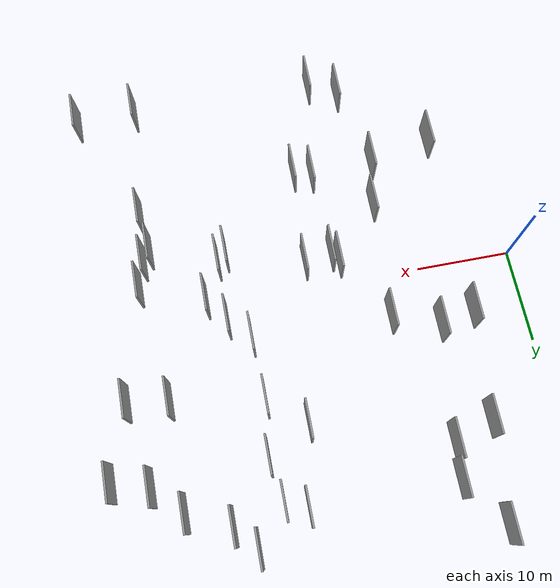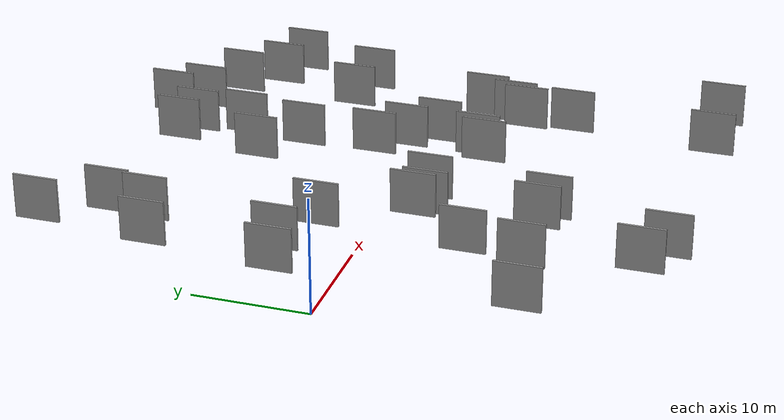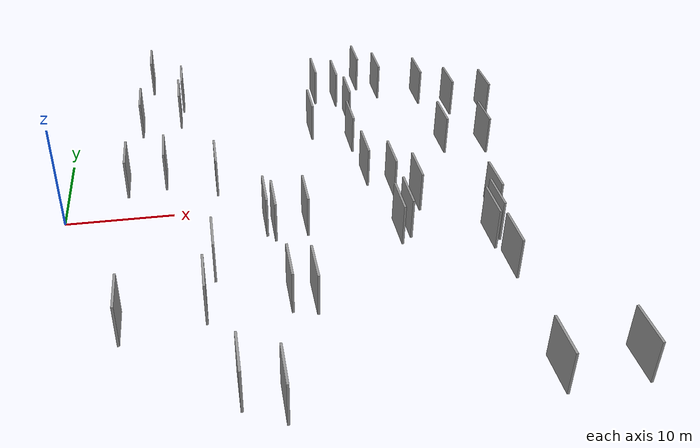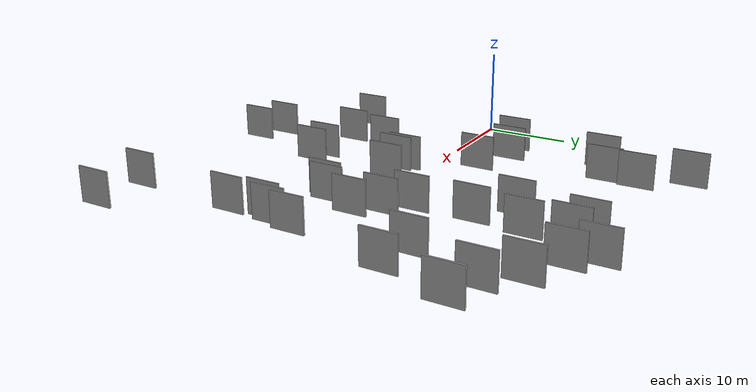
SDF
<sdf version="1.6">
 <world name="default">
  <scene>
   <sky><clouds><speed>12</speed></clouds></sky>
   <ambient>0.4 0.4 0.4 1</ambient>
   <background>0.7 0.7 0.7 1</background>
   <shadows>1</shadows>
  </scene>
  <gravity>0 0 -9.8066</gravity>
  <magnetic_field>6e-06 2.3e-05 -4.2e-05</magnetic_field>
  <physics default="0" name="default_physics" type="ode">
   <ode>
    <solver>
     <type>quick</type>
     <iters>10</iters>
     <sor>1.0</sor>
     <use_dynamic_moi_rescaling>0</use_dynamic_moi_rescaling>
    </solver>
    <constraints>
     <cfm>0</cfm>
     <erp>0.2</erp>
     <contact_max_correcting_vel>100</contact_max_correcting_vel>
     <contact_surface_layer>0.001</contact_surface_layer>
    </constraints>
   </ode>
   <max_step_size>0.004</max_step_size>
   <real_time_factor>1</real_time_factor>
   <real_time_update_rate>250</real_time_update_rate>
  </physics>
  <light name="sun" type="directional">
   <pose>0 0 10 0 0 0</pose>
   <diffuse>0.8 0.8 0.8 1</diffuse>
   <specular>0.2 0.2 0.2 1</specular>
   <attenuation>
    <range>1000</range>
    <constant>0.9</constant>
    <linear>0.01</linear>
    <quadratic>0.001</quadratic>
   </attenuation>
   <direction>-0.5 0.1 -0.9</direction>
  </light>
  <model name="grey_wall_1">
   <static>1</static>
   <pose>29.4806 16.6996 0.0 0.000000 0.000000 1.570796</pose>
   <link name="link">
    <pose>0 0 2.00 0 0 0</pose>
    <collision name="collision"><geometry><box><size>4.00 0.2 4.00</size></box></geometry></collision>
    <visual name="visual">
     <cast_shadows>0</cast_shadows>
     <geometry><box><size>4.00 0.2 4.00</size></box></geometry>
     <material>
      <script>
       <uri>model://grey_wall/materials/scripts</uri>
       <uri>model://grey_wall/materials/textures</uri>
       <name>vrc/grey_wall</name>
      </script>
     </material>
    </visual>
   </link>
  </model>
  <model name="grey_wall_2">
   <static>1</static>
   <pose>38.2699 -7.3570 0.0 0.000000 0.000000 1.570796</pose>
   <link name="link">
    <pose>0 0 2.00 0 0 0</pose>
    <collision name="collision"><geometry><box><size>4.00 0.2 4.00</size></box></geometry></collision>
    <visual name="visual">
     <cast_shadows>0</cast_shadows>
     <geometry><box><size>4.00 0.2 4.00</size></box></geometry>
     <material>
      <script>
       <uri>model://grey_wall/materials/scripts</uri>
       <uri>model://grey_wall/materials/textures</uri>
       <name>vrc/grey_wall</name>
      </script>
     </material>
    </visual>
   </link>
  </model>
  <model name="grey_wall_3">
   <static>1</static>
   <pose>37.8273 -24.6019 0.0 0.000000 0.000000 1.570796</pose>
   <link name="link">
    <pose>0 0 2.00 0 0 0</pose>
    <collision name="collision"><geometry><box><size>4.00 0.2 4.00</size></box></geometry></collision>
    <visual name="visual">
     <cast_shadows>0</cast_shadows>
     <geometry><box><size>4.00 0.2 4.00</size></box></geometry>
     <material>
      <script>
       <uri>model://grey_wall/materials/scripts</uri>
       <uri>model://grey_wall/materials/textures</uri>
       <name>vrc/grey_wall</name>
      </script>
     </material>
    </visual>
   </link>
  </model>
  <model name="grey_wall_4">
   <static>1</static>
   <pose>6.9023 17.1128 0.0 0.000000 0.000000 1.570796</pose>
   <link name="link">
    <pose>0 0 2.00 0 0 0</pose>
    <collision name="collision"><geometry><box><size>4.00 0.2 4.00</size></box></geometry></collision>
    <visual name="visual">
     <cast_shadows>0</cast_shadows>
     <geometry><box><size>4.00 0.2 4.00</size></box></geometry>
     <material>
      <script>
       <uri>model://grey_wall/materials/scripts</uri>
       <uri>model://grey_wall/materials/textures</uri>
       <name>vrc/grey_wall</name>
      </script>
     </material>
    </visual>
   </link>
  </model>
  <model name="grey_wall_5">
   <static>1</static>
   <pose>26.5202 22.1270 0.0 0.000000 0.000000 1.570796</pose>
   <link name="link">
    <pose>0 0 2.00 0 0 0</pose>
    <collision name="collision"><geometry><box><size>4.00 0.2 4.00</size></box></geometry></collision>
    <visual name="visual">
     <cast_shadows>0</cast_shadows>
     <geometry><box><size>4.00 0.2 4.00</size></box></geometry>
     <material>
      <script>
       <uri>model://grey_wall/materials/scripts</uri>
       <uri>model://grey_wall/materials/textures</uri>
       <name>vrc/grey_wall</name>
      </script>
     </material>
    </visual>
   </link>
  </model>
  <model name="grey_wall_6">
   <static>1</static>
   <pose>11.0349 18.6178 0.0 0.000000 0.000000 1.570796</pose>
   <link name="link">
    <pose>0 0 2.00 0 0 0</pose>
    <collision name="collision"><geometry><box><size>4.00 0.2 4.00</size></box></geometry></collision>
    <visual name="visual">
     <cast_shadows>0</cast_shadows>
     <geometry><box><size>4.00 0.2 4.00</size></box></geometry>
     <material>
      <script>
       <uri>model://grey_wall/materials/scripts</uri>
       <uri>model://grey_wall/materials/textures</uri>
       <name>vrc/grey_wall</name>
      </script>
     </material>
    </visual>
   </link>
  </model>
  <model name="grey_wall_7">
   <static>1</static>
   <pose>5.6935 5.6017 0.0 0.000000 0.000000 1.570796</pose>
   <link name="link">
    <pose>0 0 2.00 0 0 0</pose>
    <collision name="collision"><geometry><box><size>4.00 0.2 4.00</size></box></geometry></collision>
    <visual name="visual">
     <cast_shadows>0</cast_shadows>
     <geometry><box><size>4.00 0.2 4.00</size></box></geometry>
     <material>
      <script>
       <uri>model://grey_wall/materials/scripts</uri>
       <uri>model://grey_wall/materials/textures</uri>
       <name>vrc/grey_wall</name>
      </script>
     </material>
    </visual>
   </link>
  </model>
  <model name="grey_wall_8">
   <static>1</static>
   <pose>5.5831 -14.9222 0.0 0.000000 0.000000 1.570796</pose>
   <link name="link">
    <pose>0 0 2.00 0 0 0</pose>
    <collision name="collision"><geometry><box><size>4.00 0.2 4.00</size></box></geometry></collision>
    <visual name="visual">
     <cast_shadows>0</cast_shadows>
     <geometry><box><size>4.00 0.2 4.00</size></box></geometry>
     <material>
      <script>
       <uri>model://grey_wall/materials/scripts</uri>
       <uri>model://grey_wall/materials/textures</uri>
       <name>vrc/grey_wall</name>
      </script>
     </material>
    </visual>
   </link>
  </model>
  <model name="grey_wall_9">
   <static>1</static>
   <pose>12.4474 -13.4820 0.0 0.000000 0.000000 1.570796</pose>
   <link name="link">
    <pose>0 0 2.00 0 0 0</pose>
    <collision name="collision"><geometry><box><size>4.00 0.2 4.00</size></box></geometry></collision>
    <visual name="visual">
     <cast_shadows>0</cast_shadows>
     <geometry><box><size>4.00 0.2 4.00</size></box></geometry>
     <material>
      <script>
       <uri>model://grey_wall/materials/scripts</uri>
       <uri>model://grey_wall/materials/textures</uri>
       <name>vrc/grey_wall</name>
      </script>
     </material>
    </visual>
   </link>
  </model>
  <model name="grey_wall_10">
   <static>1</static>
   <pose>28.7693 10.9153 0.0 0.000000 0.000000 1.570796</pose>
   <link name="link">
    <pose>0 0 2.00 0 0 0</pose>
    <collision name="collision"><geometry><box><size>4.00 0.2 4.00</size></box></geometry></collision>
    <visual name="visual">
     <cast_shadows>0</cast_shadows>
     <geometry><box><size>4.00 0.2 4.00</size></box></geometry>
     <material>
      <script>
       <uri>model://grey_wall/materials/scripts</uri>
       <uri>model://grey_wall/materials/textures</uri>
       <name>vrc/grey_wall</name>
      </script>
     </material>
    </visual>
   </link>
  </model>
  <model name="grey_wall_11">
   <static>1</static>
   <pose>42.6515 8.7122 0.0 0.000000 0.000000 1.570796</pose>
   <link name="link">
    <pose>0 0 2.00 0 0 0</pose>
    <collision name="collision"><geometry><box><size>4.00 0.2 4.00</size></box></geometry></collision>
    <visual name="visual">
     <cast_shadows>0</cast_shadows>
     <geometry><box><size>4.00 0.2 4.00</size></box></geometry>
     <material>
      <script>
       <uri>model://grey_wall/materials/scripts</uri>
       <uri>model://grey_wall/materials/textures</uri>
       <name>vrc/grey_wall</name>
      </script>
     </material>
    </visual>
   </link>
  </model>
  <model name="grey_wall_12">
   <static>1</static>
   <pose>30.2467 -5.4993 0.0 0.000000 0.000000 1.570796</pose>
   <link name="link">
    <pose>0 0 2.00 0 0 0</pose>
    <collision name="collision"><geometry><box><size>4.00 0.2 4.00</size></box></geometry></collision>
    <visual name="visual">
     <cast_shadows>0</cast_shadows>
     <geometry><box><size>4.00 0.2 4.00</size></box></geometry>
     <material>
      <script>
       <uri>model://grey_wall/materials/scripts</uri>
       <uri>model://grey_wall/materials/textures</uri>
       <name>vrc/grey_wall</name>
      </script>
     </material>
    </visual>
   </link>
  </model>
  <model name="grey_wall_13">
   <static>1</static>
   <pose>18.3872 -2.5767 0.0 0.000000 0.000000 1.570796</pose>
   <link name="link">
    <pose>0 0 2.00 0 0 0</pose>
    <collision name="collision"><geometry><box><size>4.00 0.2 4.00</size></box></geometry></collision>
    <visual name="visual">
     <cast_shadows>0</cast_shadows>
     <geometry><box><size>4.00 0.2 4.00</size></box></geometry>
     <material>
      <script>
       <uri>model://grey_wall/materials/scripts</uri>
       <uri>model://grey_wall/materials/textures</uri>
       <name>vrc/grey_wall</name>
      </script>
     </material>
    </visual>
   </link>
  </model>
  <model name="grey_wall_14">
   <static>1</static>
   <pose>39.0741 -6.1592 0.0 0.000000 0.000000 1.570796</pose>
   <link name="link">
    <pose>0 0 2.00 0 0 0</pose>
    <collision name="collision"><geometry><box><size>4.00 0.2 4.00</size></box></geometry></collision>
    <visual name="visual">
     <cast_shadows>0</cast_shadows>
     <geometry><box><size>4.00 0.2 4.00</size></box></geometry>
     <material>
      <script>
       <uri>model://grey_wall/materials/scripts</uri>
       <uri>model://grey_wall/materials/textures</uri>
       <name>vrc/grey_wall</name>
      </script>
     </material>
    </visual>
   </link>
  </model>
  <model name="grey_wall_15">
   <static>1</static>
   <pose>41.2561 17.4411 0.0 0.000000 0.000000 1.570796</pose>
   <link name="link">
    <pose>0 0 2.00 0 0 0</pose>
    <collision name="collision"><geometry><box><size>4.00 0.2 4.00</size></box></geometry></collision>
    <visual name="visual">
     <cast_shadows>0</cast_shadows>
     <geometry><box><size>4.00 0.2 4.00</size></box></geometry>
     <material>
      <script>
       <uri>model://grey_wall/materials/scripts</uri>
       <uri>model://grey_wall/materials/textures</uri>
       <name>vrc/grey_wall</name>
      </script>
     </material>
    </visual>
   </link>
  </model>
  <model name="grey_wall_16">
   <static>1</static>
   <pose>38.3568 20.4341 0.0 0.000000 0.000000 1.570796</pose>
   <link name="link">
    <pose>0 0 2.00 0 0 0</pose>
    <collision name="collision"><geometry><box><size>4.00 0.2 4.00</size></box></geometry></collision>
    <visual name="visual">
     <cast_shadows>0</cast_shadows>
     <geometry><box><size>4.00 0.2 4.00</size></box></geometry>
     <material>
      <script>
       <uri>model://grey_wall/materials/scripts</uri>
       <uri>model://grey_wall/materials/textures</uri>
       <name>vrc/grey_wall</name>
      </script>
     </material>
    </visual>
   </link>
  </model>
  <model name="grey_wall_17">
   <static>1</static>
   <pose>17.5660 -24.4572 0.0 0.000000 0.000000 1.570796</pose>
   <link name="link">
    <pose>0 0 2.00 0 0 0</pose>
    <collision name="collision"><geometry><box><size>4.00 0.2 4.00</size></box></geometry></collision>
    <visual name="visual">
     <cast_shadows>0</cast_shadows>
     <geometry><box><size>4.00 0.2 4.00</size></box></geometry>
     <material>
      <script>
       <uri>model://grey_wall/materials/scripts</uri>
       <uri>model://grey_wall/materials/textures</uri>
       <name>vrc/grey_wall</name>
      </script>
     </material>
    </visual>
   </link>
  </model>
  <model name="grey_wall_18">
   <static>1</static>
   <pose>14.4751 -22.8161 0.0 0.000000 0.000000 1.570796</pose>
   <link name="link">
    <pose>0 0 2.00 0 0 0</pose>
    <collision name="collision"><geometry><box><size>4.00 0.2 4.00</size></box></geometry></collision>
    <visual name="visual">
     <cast_shadows>0</cast_shadows>
     <geometry><box><size>4.00 0.2 4.00</size></box></geometry>
     <material>
      <script>
       <uri>model://grey_wall/materials/scripts</uri>
       <uri>model://grey_wall/materials/textures</uri>
       <name>vrc/grey_wall</name>
      </script>
     </material>
    </visual>
   </link>
  </model>
  <model name="grey_wall_19">
   <static>1</static>
   <pose>31.8663 24.9153 0.0 0.000000 0.000000 1.570796</pose>
   <link name="link">
    <pose>0 0 2.00 0 0 0</pose>
    <collision name="collision"><geometry><box><size>4.00 0.2 4.00</size></box></geometry></collision>
    <visual name="visual">
     <cast_shadows>0</cast_shadows>
     <geometry><box><size>4.00 0.2 4.00</size></box></geometry>
     <material>
      <script>
       <uri>model://grey_wall/materials/scripts</uri>
       <uri>model://grey_wall/materials/textures</uri>
       <name>vrc/grey_wall</name>
      </script>
     </material>
    </visual>
   </link>
  </model>
  <model name="grey_wall_20">
   <static>1</static>
   <pose>31.2213 -4.6838 0.0 0.000000 0.000000 1.570796</pose>
   <link name="link">
    <pose>0 0 2.00 0 0 0</pose>
    <collision name="collision"><geometry><box><size>4.00 0.2 4.00</size></box></geometry></collision>
    <visual name="visual">
     <cast_shadows>0</cast_shadows>
     <geometry><box><size>4.00 0.2 4.00</size></box></geometry>
     <material>
      <script>
       <uri>model://grey_wall/materials/scripts</uri>
       <uri>model://grey_wall/materials/textures</uri>
       <name>vrc/grey_wall</name>
      </script>
     </material>
    </visual>
   </link>
  </model>
  <model name="grey_wall_21">
   <static>1</static>
   <pose>13.3891 -8.3445 0.0 0.000000 0.000000 1.570796</pose>
   <link name="link">
    <pose>0 0 2.00 0 0 0</pose>
    <collision name="collision"><geometry><box><size>4.00 0.2 4.00</size></box></geometry></collision>
    <visual name="visual">
     <cast_shadows>0</cast_shadows>
     <geometry><box><size>4.00 0.2 4.00</size></box></geometry>
     <material>
      <script>
       <uri>model://grey_wall/materials/scripts</uri>
       <uri>model://grey_wall/materials/textures</uri>
       <name>vrc/grey_wall</name>
      </script>
     </material>
    </visual>
   </link>
  </model>
  <model name="grey_wall_22">
   <static>1</static>
   <pose>33.0888 -0.6318 0.0 0.000000 0.000000 1.570796</pose>
   <link name="link">
    <pose>0 0 2.00 0 0 0</pose>
    <collision name="collision"><geometry><box><size>4.00 0.2 4.00</size></box></geometry></collision>
    <visual name="visual">
     <cast_shadows>0</cast_shadows>
     <geometry><box><size>4.00 0.2 4.00</size></box></geometry>
     <material>
      <script>
       <uri>model://grey_wall/materials/scripts</uri>
       <uri>model://grey_wall/materials/textures</uri>
       <name>vrc/grey_wall</name>
      </script>
     </material>
    </visual>
   </link>
  </model>
  <model name="grey_wall_23">
   <static>1</static>
   <pose>21.3471 -13.6108 0.0 0.000000 0.000000 1.570796</pose>
   <link name="link">
    <pose>0 0 2.00 0 0 0</pose>
    <collision name="collision"><geometry><box><size>4.00 0.2 4.00</size></box></geometry></collision>
    <visual name="visual">
     <cast_shadows>0</cast_shadows>
     <geometry><box><size>4.00 0.2 4.00</size></box></geometry>
     <material>
      <script>
       <uri>model://grey_wall/materials/scripts</uri>
       <uri>model://grey_wall/materials/textures</uri>
       <name>vrc/grey_wall</name>
      </script>
     </material>
    </visual>
   </link>
  </model>
  <model name="grey_wall_24">
   <static>1</static>
   <pose>29.0534 4.3190 0.0 0.000000 0.000000 1.570796</pose>
   <link name="link">
    <pose>0 0 2.00 0 0 0</pose>
    <collision name="collision"><geometry><box><size>4.00 0.2 4.00</size></box></geometry></collision>
    <visual name="visual">
     <cast_shadows>0</cast_shadows>
     <geometry><box><size>4.00 0.2 4.00</size></box></geometry>
     <material>
      <script>
       <uri>model://grey_wall/materials/scripts</uri>
       <uri>model://grey_wall/materials/textures</uri>
       <name>vrc/grey_wall</name>
      </script>
     </material>
    </visual>
   </link>
  </model>
  <model name="grey_wall_25">
   <static>1</static>
   <pose>44.3422 -24.4508 0.0 0.000000 0.000000 1.570796</pose>
   <link name="link">
    <pose>0 0 2.00 0 0 0</pose>
    <collision name="collision"><geometry><box><size>4.00 0.2 4.00</size></box></geometry></collision>
    <visual name="visual">
     <cast_shadows>0</cast_shadows>
     <geometry><box><size>4.00 0.2 4.00</size></box></geometry>
     <material>
      <script>
       <uri>model://grey_wall/materials/scripts</uri>
       <uri>model://grey_wall/materials/textures</uri>
       <name>vrc/grey_wall</name>
      </script>
     </material>
    </visual>
   </link>
  </model>
  <model name="grey_wall_26">
   <static>1</static>
   <pose>33.9357 22.5125 0.0 0.000000 0.000000 1.570796</pose>
   <link name="link">
    <pose>0 0 2.00 0 0 0</pose>
    <collision name="collision"><geometry><box><size>4.00 0.2 4.00</size></box></geometry></collision>
    <visual name="visual">
     <cast_shadows>0</cast_shadows>
     <geometry><box><size>4.00 0.2 4.00</size></box></geometry>
     <material>
      <script>
       <uri>model://grey_wall/materials/scripts</uri>
       <uri>model://grey_wall/materials/textures</uri>
       <name>vrc/grey_wall</name>
      </script>
     </material>
    </visual>
   </link>
  </model>
  <model name="grey_wall_27">
   <static>1</static>
   <pose>11.3929 22.2694 0.0 0.000000 0.000000 1.570796</pose>
   <link name="link">
    <pose>0 0 2.00 0 0 0</pose>
    <collision name="collision"><geometry><box><size>4.00 0.2 4.00</size></box></geometry></collision>
    <visual name="visual">
     <cast_shadows>0</cast_shadows>
     <geometry><box><size>4.00 0.2 4.00</size></box></geometry>
     <material>
      <script>
       <uri>model://grey_wall/materials/scripts</uri>
       <uri>model://grey_wall/materials/textures</uri>
       <name>vrc/grey_wall</name>
      </script>
     </material>
    </visual>
   </link>
  </model>
  <model name="grey_wall_28">
   <static>1</static>
   <pose>38.3290 9.2929 0.0 0.000000 0.000000 1.570796</pose>
   <link name="link">
    <pose>0 0 2.00 0 0 0</pose>
    <collision name="collision"><geometry><box><size>4.00 0.2 4.00</size></box></geometry></collision>
    <visual name="visual">
     <cast_shadows>0</cast_shadows>
     <geometry><box><size>4.00 0.2 4.00</size></box></geometry>
     <material>
      <script>
       <uri>model://grey_wall/materials/scripts</uri>
       <uri>model://grey_wall/materials/textures</uri>
       <name>vrc/grey_wall</name>
      </script>
     </material>
    </visual>
   </link>
  </model>
  <model name="grey_wall_29">
   <static>1</static>
   <pose>31.2371 1.9903 0.0 0.000000 0.000000 1.570796</pose>
   <link name="link">
    <pose>0 0 2.00 0 0 0</pose>
    <collision name="collision"><geometry><box><size>4.00 0.2 4.00</size></box></geometry></collision>
    <visual name="visual">
     <cast_shadows>0</cast_shadows>
     <geometry><box><size>4.00 0.2 4.00</size></box></geometry>
     <material>
      <script>
       <uri>model://grey_wall/materials/scripts</uri>
       <uri>model://grey_wall/materials/textures</uri>
       <name>vrc/grey_wall</name>
      </script>
     </material>
    </visual>
   </link>
  </model>
  <model name="grey_wall_30">
   <static>1</static>
   <pose>9.3657 6.4609 0.0 0.000000 0.000000 1.570796</pose>
   <link name="link">
    <pose>0 0 2.00 0 0 0</pose>
    <collision name="collision"><geometry><box><size>4.00 0.2 4.00</size></box></geometry></collision>
    <visual name="visual">
     <cast_shadows>0</cast_shadows>
     <geometry><box><size>4.00 0.2 4.00</size></box></geometry>
     <material>
      <script>
       <uri>model://grey_wall/materials/scripts</uri>
       <uri>model://grey_wall/materials/textures</uri>
       <name>vrc/grey_wall</name>
      </script>
     </material>
    </visual>
   </link>
  </model>
  <model name="grey_wall_31">
   <static>1</static>
   <pose>19.0783 -3.4310 0.0 0.000000 0.000000 1.570796</pose>
   <link name="link">
    <pose>0 0 2.00 0 0 0</pose>
    <collision name="collision"><geometry><box><size>4.00 0.2 4.00</size></box></geometry></collision>
    <visual name="visual">
     <cast_shadows>0</cast_shadows>
     <geometry><box><size>4.00 0.2 4.00</size></box></geometry>
     <material>
      <script>
       <uri>model://grey_wall/materials/scripts</uri>
       <uri>model://grey_wall/materials/textures</uri>
       <name>vrc/grey_wall</name>
      </script>
     </material>
    </visual>
   </link>
  </model>
  <model name="grey_wall_32">
   <static>1</static>
   <pose>28.7641 21.1663 0.0 0.000000 0.000000 1.570796</pose>
   <link name="link">
    <pose>0 0 2.00 0 0 0</pose>
    <collision name="collision"><geometry><box><size>4.00 0.2 4.00</size></box></geometry></collision>
    <visual name="visual">
     <cast_shadows>0</cast_shadows>
     <geometry><box><size>4.00 0.2 4.00</size></box></geometry>
     <material>
      <script>
       <uri>model://grey_wall/materials/scripts</uri>
       <uri>model://grey_wall/materials/textures</uri>
       <name>vrc/grey_wall</name>
      </script>
     </material>
    </visual>
   </link>
  </model>
  <model name="grey_wall_33">
   <static>1</static>
   <pose>7.9843 27.2014 0.0 0.000000 0.000000 1.570796</pose>
   <link name="link">
    <pose>0 0 2.00 0 0 0</pose>
    <collision name="collision"><geometry><box><size>4.00 0.2 4.00</size></box></geometry></collision>
    <visual name="visual">
     <cast_shadows>0</cast_shadows>
     <geometry><box><size>4.00 0.2 4.00</size></box></geometry>
     <material>
      <script>
       <uri>model://grey_wall/materials/scripts</uri>
       <uri>model://grey_wall/materials/textures</uri>
       <name>vrc/grey_wall</name>
      </script>
     </material>
    </visual>
   </link>
  </model>
  <model name="grey_wall_34">
   <static>1</static>
   <pose>39.8619 -3.2701 0.0 0.000000 0.000000 1.570796</pose>
   <link name="link">
    <pose>0 0 2.00 0 0 0</pose>
    <collision name="collision"><geometry><box><size>4.00 0.2 4.00</size></box></geometry></collision>
    <visual name="visual">
     <cast_shadows>0</cast_shadows>
     <geometry><box><size>4.00 0.2 4.00</size></box></geometry>
     <material>
      <script>
       <uri>model://grey_wall/materials/scripts</uri>
       <uri>model://grey_wall/materials/textures</uri>
       <name>vrc/grey_wall</name>
      </script>
     </material>
    </visual>
   </link>
  </model>
  <model name="grey_wall_35">
   <static>1</static>
   <pose>38.7597 -11.6119 0.0 0.000000 0.000000 1.570796</pose>
   <link name="link">
    <pose>0 0 2.00 0 0 0</pose>
    <collision name="collision"><geometry><box><size>4.00 0.2 4.00</size></box></geometry></collision>
    <visual name="visual">
     <cast_shadows>0</cast_shadows>
     <geometry><box><size>4.00 0.2 4.00</size></box></geometry>
     <material>
      <script>
       <uri>model://grey_wall/materials/scripts</uri>
       <uri>model://grey_wall/materials/textures</uri>
       <name>vrc/grey_wall</name>
      </script>
     </material>
    </visual>
   </link>
  </model>
  <model name="grey_wall_36">
   <static>1</static>
   <pose>24.9702 14.0693 0.0 0.000000 0.000000 1.570796</pose>
   <link name="link">
    <pose>0 0 2.00 0 0 0</pose>
    <collision name="collision"><geometry><box><size>4.00 0.2 4.00</size></box></geometry></collision>
    <visual name="visual">
     <cast_shadows>0</cast_shadows>
     <geometry><box><size>4.00 0.2 4.00</size></box></geometry>
     <material>
      <script>
       <uri>model://grey_wall/materials/scripts</uri>
       <uri>model://grey_wall/materials/textures</uri>
       <name>vrc/grey_wall</name>
      </script>
     </material>
    </visual>
   </link>
  </model>
  <model name="grey_wall_37">
   <static>1</static>
   <pose>19.3540 -13.0891 0.0 0.000000 0.000000 1.570796</pose>
   <link name="link">
    <pose>0 0 2.00 0 0 0</pose>
    <collision name="collision"><geometry><box><size>4.00 0.2 4.00</size></box></geometry></collision>
    <visual name="visual">
     <cast_shadows>0</cast_shadows>
     <geometry><box><size>4.00 0.2 4.00</size></box></geometry>
     <material>
      <script>
       <uri>model://grey_wall/materials/scripts</uri>
       <uri>model://grey_wall/materials/textures</uri>
       <name>vrc/grey_wall</name>
      </script>
     </material>
    </visual>
   </link>
  </model>
  <model name="grey_wall_38">
   <static>1</static>
   <pose>14.2920 4.6270 0.0 0.000000 0.000000 1.570796</pose>
   <link name="link">
    <pose>0 0 2.00 0 0 0</pose>
    <collision name="collision"><geometry><box><size>4.00 0.2 4.00</size></box></geometry></collision>
    <visual name="visual">
     <cast_shadows>0</cast_shadows>
     <geometry><box><size>4.00 0.2 4.00</size></box></geometry>
     <material>
      <script>
       <uri>model://grey_wall/materials/scripts</uri>
       <uri>model://grey_wall/materials/textures</uri>
       <name>vrc/grey_wall</name>
      </script>
     </material>
    </visual>
   </link>
  </model>
  <model name="grey_wall_39">
   <static>1</static>
   <pose>22.0542 -2.9972 0.0 0.000000 0.000000 1.570796</pose>
   <link name="link">
    <pose>0 0 2.00 0 0 0</pose>
    <collision name="collision"><geometry><box><size>4.00 0.2 4.00</size></box></geometry></collision>
    <visual name="visual">
     <cast_shadows>0</cast_shadows>
     <geometry><box><size>4.00 0.2 4.00</size></box></geometry>
     <material>
      <script>
       <uri>model://grey_wall/materials/scripts</uri>
       <uri>model://grey_wall/materials/textures</uri>
       <name>vrc/grey_wall</name>
      </script>
     </material>
    </visual>
   </link>
  </model>
  <model name="grey_wall_40">
   <static>1</static>
   <pose>45.0840 16.3162 0.0 0.000000 0.000000 1.570796</pose>
   <link name="link">
    <pose>0 0 2.00 0 0 0</pose>
    <collision name="collision"><geometry><box><size>4.00 0.2 4.00</size></box></geometry></collision>
    <visual name="visual">
     <cast_shadows>0</cast_shadows>
     <geometry><box><size>4.00 0.2 4.00</size></box></geometry>
     <material>
      <script>
       <uri>model://grey_wall/materials/scripts</uri>
       <uri>model://grey_wall/materials/textures</uri>
       <name>vrc/grey_wall</name>
      </script>
     </material>
    </visual>
   </link>
  </model>
 </world>
</sdf>
